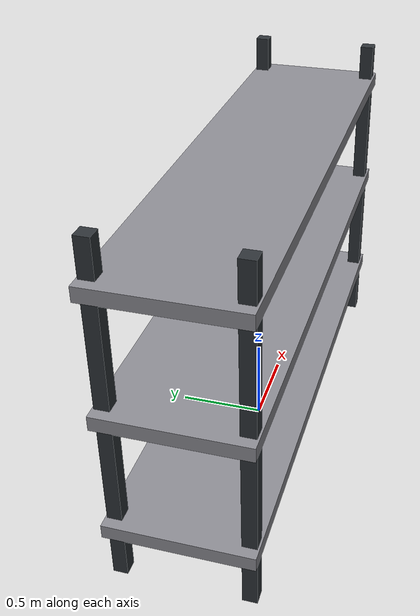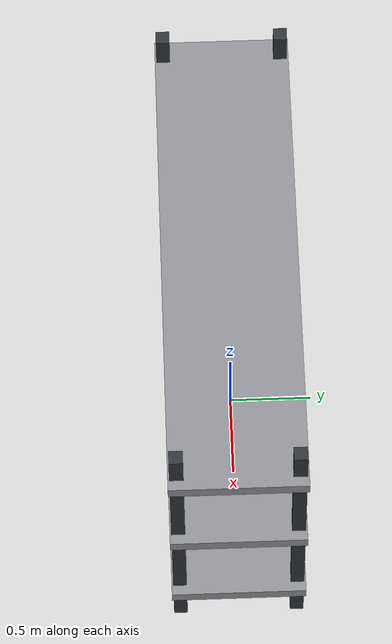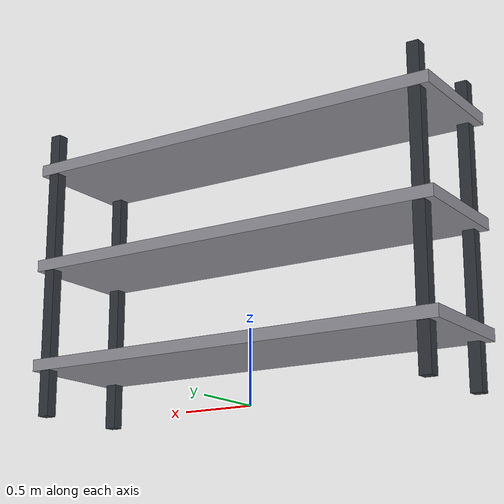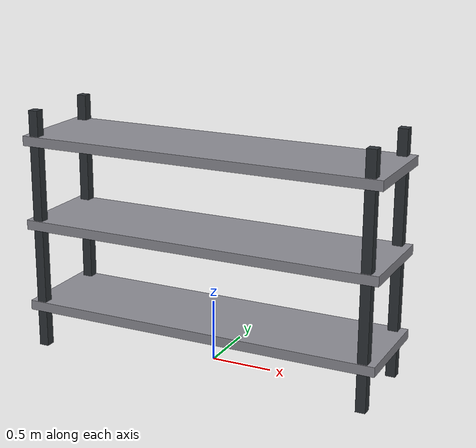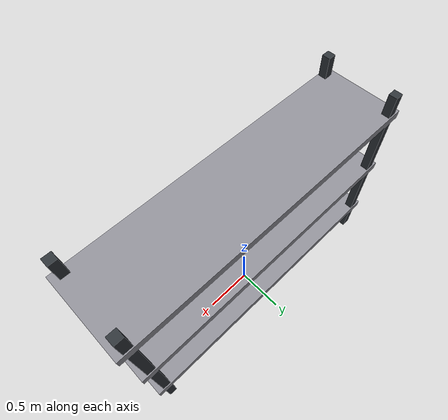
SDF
<?xml version="1.0"?>
<sdf version="1.11">
  <model name="warehouse_shelf">
    <static>true</static>
    <link name="link">
      <collision name="collision">
        <geometry><box><size>3.0 0.8 2.0</size></box></geometry>
        <pose>0 0 1.0 0 0 0</pose>
      </collision>
      <visual name="upright_left"><pose>-1.4 -0.35 1.0 0 0 0</pose><geometry><box><size>0.08 0.08 2.0</size></box></geometry><material><ambient>0.18 0.20 0.22 1</ambient><diffuse>0.18 0.20 0.22 1</diffuse></material></visual>
      <visual name="upright_right"><pose>1.4 -0.35 1.0 0 0 0</pose><geometry><box><size>0.08 0.08 2.0</size></box></geometry><material><ambient>0.18 0.20 0.22 1</ambient><diffuse>0.18 0.20 0.22 1</diffuse></material></visual>
      <visual name="upright_back_left"><pose>-1.4 0.35 1.0 0 0 0</pose><geometry><box><size>0.08 0.08 2.0</size></box></geometry><material><ambient>0.18 0.20 0.22 1</ambient><diffuse>0.18 0.20 0.22 1</diffuse></material></visual>
      <visual name="upright_back_right"><pose>1.4 0.35 1.0 0 0 0</pose><geometry><box><size>0.08 0.08 2.0</size></box></geometry><material><ambient>0.18 0.20 0.22 1</ambient><diffuse>0.18 0.20 0.22 1</diffuse></material></visual>
      <visual name="shelf_bottom"><pose>0 0 0.35 0 0 0</pose><geometry><box><size>3.0 0.8 0.08</size></box></geometry><material><ambient>0.55 0.55 0.58 1</ambient><diffuse>0.55 0.55 0.58 1</diffuse></material></visual>
      <visual name="shelf_middle"><pose>0 0 1.05 0 0 0</pose><geometry><box><size>3.0 0.8 0.08</size></box></geometry><material><ambient>0.55 0.55 0.58 1</ambient><diffuse>0.55 0.55 0.58 1</diffuse></material></visual>
      <visual name="shelf_top"><pose>0 0 1.75 0 0 0</pose><geometry><box><size>3.0 0.8 0.08</size></box></geometry><material><ambient>0.55 0.55 0.58 1</ambient><diffuse>0.55 0.55 0.58 1</diffuse></material></visual>
    </link>
  </model>
</sdf>
